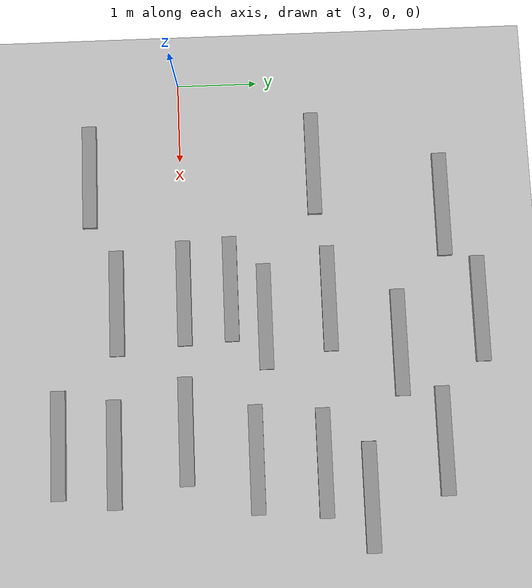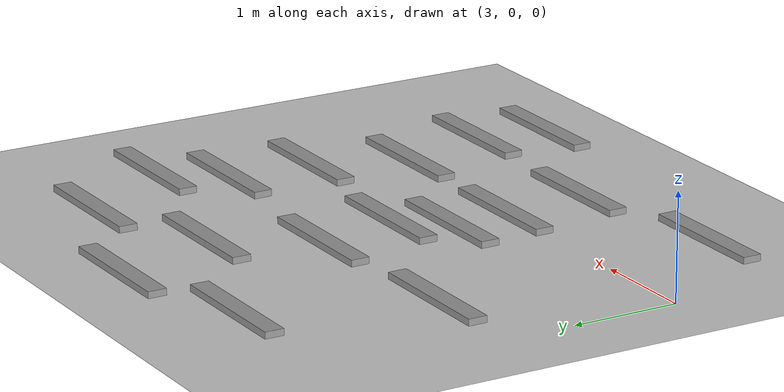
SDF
<sdf version="1.6">
 <world name="default">
  <model name="ground_plane">
   <static>1</static>
   <link name="link">
    <collision name="collision">
     <geometry><plane><normal>0 0 1</normal><size>100 100</size></plane></geometry>
     <surface>
      <contact><ode><kp>1e+12</kp><min_depth>0.01</min_depth></ode></contact>
      <friction><ode><mu>1e+06</mu><mu2>500000</mu2></ode></friction>
     </surface>
    </collision>
    <visual name="visual">
     <cast_shadows>0</cast_shadows>
     <geometry><plane><normal>0 0 1</normal><size>100 100</size></plane></geometry>
     <material>
      <script><uri>file://media/materials/scripts/gazebo.material</uri><name>Gazebo/Grey</name></script>
     </material>
    </visual>
   </link>
  </model>
  <model name="unit_box_heavy_clone_clone_clone_clone">
   <link name="unit_box::link">
    <inertial>
     <mass>5000</mass>
     <inertia><ixx>833.333</ixx><ixy>0</ixy><ixz>0</ixz><iyy>833.333</iyy><iyz>0</iyz><izz>833.333</izz></inertia>
    </inertial>
    <visual name="visual">
     <geometry><box><size>1.30816 0.176312 0.062582</size></box></geometry>
     <material>
      <script><name>Gazebo/Grey</name><uri>file://media/materials/scripts/gazebo.material</uri></script>
      <shader type="pixel"><normal_map>__default__</normal_map></shader>
     </material>
    </visual>
    <collision name="collision">
     <geometry><box><size>1.30816 0.176312 0.062582</size></box></geometry>
     <surface>
      <friction>
       <ode><mu>1</mu><mu2>1</mu2><fdir1>0 0 0</fdir1><slip1>0</slip1><slip2>0</slip2></ode>
       <torsional>
        <coefficient>1</coefficient>
        <patch_radius>0</patch_radius>
        <surface_radius>0</surface_radius>
        <use_patch_radius>1</use_patch_radius>
        <ode><slip>0</slip></ode>
       </torsional>
      </friction>
      <bounce><restitution_coefficient>0</restitution_coefficient><threshold>1e+06</threshold></bounce>
      <contact>
       <collide_without_contact>0</collide_without_contact>
       <collide_without_contact_bitmask>1</collide_without_contact_bitmask>
       <collide_bitmask>1</collide_bitmask>
       <ode>
        <soft_cfm>0</soft_cfm>
        <soft_erp>0.2</soft_erp>
        <kp>1e+13</kp>
        <kd>1</kd>
        <max_vel>0.01</max_vel>
        <min_depth>0</min_depth>
       </ode>
       <bullet>
        <split_impulse>1</split_impulse>
        <split_impulse_penetration_threshold>-0.01</split_impulse_penetration_threshold>
        <soft_cfm>0</soft_cfm>
        <soft_erp>0.2</soft_erp>
        <kp>1e+13</kp>
        <kd>1</kd>
       </bullet>
      </contact>
     </surface>
    </collision>
   </link>
   <static>0</static>
   <pose>7.3588 -0.001088 0.031291 0 0 -3e-05</pose>
  </model>
  <model name="unit_box_heavy_clone_clone_clone_clone_0">
   <link name="unit_box::link">
    <inertial>
     <mass>5000</mass>
     <inertia><ixx>833.333</ixx><ixy>0</ixy><ixz>0</ixz><iyy>833.333</iyy><iyz>0</iyz><izz>833.333</izz></inertia>
    </inertial>
    <visual name="visual">
     <geometry><box><size>1.30816 0.176312 0.062582</size></box></geometry>
     <material>
      <script><name>Gazebo/Grey</name><uri>file://media/materials/scripts/gazebo.material</uri></script>
      <shader type="pixel"><normal_map>__default__</normal_map></shader>
     </material>
    </visual>
    <collision name="collision">
     <geometry><box><size>1.30816 0.176312 0.062582</size></box></geometry>
     <surface>
      <friction>
       <ode><mu>1</mu><mu2>1</mu2><fdir1>0 0 0</fdir1><slip1>0</slip1><slip2>0</slip2></ode>
       <torsional>
        <coefficient>1</coefficient>
        <patch_radius>0</patch_radius>
        <surface_radius>0</surface_radius>
        <use_patch_radius>1</use_patch_radius>
        <ode><slip>0</slip></ode>
       </torsional>
      </friction>
      <bounce><restitution_coefficient>0</restitution_coefficient><threshold>1e+06</threshold></bounce>
      <contact>
       <collide_without_contact>0</collide_without_contact>
       <collide_without_contact_bitmask>1</collide_without_contact_bitmask>
       <collide_bitmask>1</collide_bitmask>
       <ode>
        <soft_cfm>0</soft_cfm>
        <soft_erp>0.2</soft_erp>
        <kp>1e+13</kp>
        <kd>1</kd>
        <max_vel>0.01</max_vel>
        <min_depth>0</min_depth>
       </ode>
       <bullet>
        <split_impulse>1</split_impulse>
        <split_impulse_penetration_threshold>-0.01</split_impulse_penetration_threshold>
        <soft_cfm>0</soft_cfm>
        <soft_erp>0.2</soft_erp>
        <kp>1e+13</kp>
        <kd>1</kd>
       </bullet>
      </contact>
     </surface>
    </collision>
   </link>
   <static>0</static>
   <pose>5.67589 0.012274 0.031291 0 0 -2.9e-05</pose>
  </model>
  <model name="unit_box_heavy_clone_clone_clone_clone_18">
   <link name="unit_box::link">
    <inertial>
     <mass>5000</mass>
     <inertia><ixx>833.333</ixx><ixy>0</ixy><ixz>0</ixz><iyy>833.333</iyy><iyz>0</iyz><izz>833.333</izz></inertia>
    </inertial>
    <visual name="visual">
     <geometry><box><size>1.30816 0.176312 0.062582</size></box></geometry>
     <material>
      <script><name>Gazebo/Grey</name><uri>file://media/materials/scripts/gazebo.material</uri></script>
      <shader type="pixel"><normal_map>__default__</normal_map></shader>
     </material>
    </visual>
    <collision name="collision">
     <geometry><box><size>1.30816 0.176312 0.062582</size></box></geometry>
     <surface>
      <friction>
       <ode><mu>1</mu><mu2>1</mu2><fdir1>0 0 0</fdir1><slip1>0</slip1><slip2>0</slip2></ode>
       <torsional>
        <coefficient>1</coefficient>
        <patch_radius>0</patch_radius>
        <surface_radius>0</surface_radius>
        <use_patch_radius>1</use_patch_radius>
        <ode><slip>0</slip></ode>
       </torsional>
      </friction>
      <bounce><restitution_coefficient>0</restitution_coefficient><threshold>1e+06</threshold></bounce>
      <contact>
       <collide_without_contact>0</collide_without_contact>
       <collide_without_contact_bitmask>1</collide_without_contact_bitmask>
       <collide_bitmask>1</collide_bitmask>
       <ode>
        <soft_cfm>0</soft_cfm>
        <soft_erp>0.2</soft_erp>
        <kp>1e+13</kp>
        <kd>1</kd>
        <max_vel>0.01</max_vel>
        <min_depth>0</min_depth>
       </ode>
       <bullet>
        <split_impulse>1</split_impulse>
        <split_impulse_penetration_threshold>-0.01</split_impulse_penetration_threshold>
        <soft_cfm>0</soft_cfm>
        <soft_erp>0.2</soft_erp>
        <kp>1e+13</kp>
        <kd>1</kd>
       </bullet>
      </contact>
     </surface>
    </collision>
   </link>
   <static>0</static>
   <pose>4.16259 -1.13321 0.031291 -0 -0 -3e-05</pose>
  </model>
  <model name="unit_box_heavy_clone_clone_clone_clone_22">
   <link name="unit_box::link">
    <inertial>
     <mass>5000</mass>
     <inertia><ixx>833.333</ixx><ixy>0</ixy><ixz>0</ixz><iyy>833.333</iyy><iyz>0</iyz><izz>833.333</izz></inertia>
    </inertial>
    <visual name="visual">
     <geometry><box><size>1.30816 0.176312 0.062582</size></box></geometry>
     <material>
      <script><name>Gazebo/Grey</name><uri>file://media/materials/scripts/gazebo.material</uri></script>
      <shader type="pixel"><normal_map>__default__</normal_map></shader>
     </material>
    </visual>
    <collision name="collision">
     <geometry><box><size>1.30816 0.176312 0.062582</size></box></geometry>
     <surface>
      <friction>
       <ode><mu>1</mu><mu2>1</mu2><fdir1>0 0 0</fdir1><slip1>0</slip1><slip2>0</slip2></ode>
       <torsional>
        <coefficient>1</coefficient>
        <patch_radius>0</patch_radius>
        <surface_radius>0</surface_radius>
        <use_patch_radius>1</use_patch_radius>
        <ode><slip>0</slip></ode>
       </torsional>
      </friction>
      <bounce><restitution_coefficient>0</restitution_coefficient><threshold>1e+06</threshold></bounce>
      <contact>
       <collide_without_contact>0</collide_without_contact>
       <collide_without_contact_bitmask>1</collide_without_contact_bitmask>
       <collide_bitmask>1</collide_bitmask>
       <ode>
        <soft_cfm>0</soft_cfm>
        <soft_erp>0.2</soft_erp>
        <kp>1e+13</kp>
        <kd>1</kd>
        <max_vel>0.01</max_vel>
        <min_depth>0</min_depth>
       </ode>
       <bullet>
        <split_impulse>1</split_impulse>
        <split_impulse_penetration_threshold>-0.01</split_impulse_penetration_threshold>
        <soft_cfm>0</soft_cfm>
        <soft_erp>0.2</soft_erp>
        <kp>1e+13</kp>
        <kd>1</kd>
       </bullet>
      </contact>
     </surface>
    </collision>
   </link>
   <static>0</static>
   <pose>4.08567 1.67192 0.031291 -0 -0 -3e-05</pose>
  </model>
  <model name="unit_box_heavy_clone_clone_clone_clone_25">
   <link name="unit_box::link">
    <inertial>
     <mass>5000</mass>
     <inertia><ixx>833.333</ixx><ixy>0</ixy><ixz>0</ixz><iyy>833.333</iyy><iyz>0</iyz><izz>833.333</izz></inertia>
    </inertial>
    <visual name="visual">
     <geometry><box><size>1.30816 0.176312 0.062582</size></box></geometry>
     <material>
      <script><name>Gazebo/Grey</name><uri>file://media/materials/scripts/gazebo.material</uri></script>
      <shader type="pixel"><normal_map>__default__</normal_map></shader>
     </material>
    </visual>
    <collision name="collision">
     <geometry><box><size>1.30816 0.176312 0.062582</size></box></geometry>
     <surface>
      <friction>
       <ode><mu>1</mu><mu2>1</mu2><fdir1>0 0 0</fdir1><slip1>0</slip1><slip2>0</slip2></ode>
       <torsional>
        <coefficient>1</coefficient>
        <patch_radius>0</patch_radius>
        <surface_radius>0</surface_radius>
        <use_patch_radius>1</use_patch_radius>
        <ode><slip>0</slip></ode>
       </torsional>
      </friction>
      <bounce><restitution_coefficient>0</restitution_coefficient><threshold>1e+06</threshold></bounce>
      <contact>
       <collide_without_contact>0</collide_without_contact>
       <collide_without_contact_bitmask>1</collide_without_contact_bitmask>
       <collide_bitmask>1</collide_bitmask>
       <ode>
        <soft_cfm>0</soft_cfm>
        <soft_erp>0.2</soft_erp>
        <kp>1e+13</kp>
        <kd>1</kd>
        <max_vel>0.01</max_vel>
        <min_depth>0</min_depth>
       </ode>
       <bullet>
        <split_impulse>1</split_impulse>
        <split_impulse_penetration_threshold>-0.01</split_impulse_penetration_threshold>
        <soft_cfm>0</soft_cfm>
        <soft_erp>0.2</soft_erp>
        <kp>1e+13</kp>
        <kd>1</kd>
       </bullet>
      </contact>
     </surface>
    </collision>
   </link>
   <static>0</static>
   <pose>4.67342 3.25892 0.031291 0 0 -3e-05</pose>
  </model>
  <model name="unit_box_heavy_clone_clone_clone_clone_34">
   <link name="unit_box::link">
    <inertial>
     <mass>5000</mass>
     <inertia><ixx>833.333</ixx><ixy>0</ixy><ixz>0</ixz><iyy>833.333</iyy><iyz>0</iyz><izz>833.333</izz></inertia>
    </inertial>
    <visual name="visual">
     <geometry><box><size>1.30816 0.176312 0.062582</size></box></geometry>
     <material>
      <script><name>Gazebo/Grey</name><uri>file://media/materials/scripts/gazebo.material</uri></script>
      <shader type="pixel"><normal_map>__default__</normal_map></shader>
     </material>
    </visual>
    <collision name="collision">
     <geometry><box><size>1.30816 0.176312 0.062582</size></box></geometry>
     <surface>
      <friction>
       <ode><mu>1</mu><mu2>1</mu2><fdir1>0 0 0</fdir1><slip1>0</slip1><slip2>0</slip2></ode>
       <torsional>
        <coefficient>1</coefficient>
        <patch_radius>0</patch_radius>
        <surface_radius>0</surface_radius>
        <use_patch_radius>1</use_patch_radius>
        <ode><slip>0</slip></ode>
       </torsional>
      </friction>
      <bounce><restitution_coefficient>0</restitution_coefficient><threshold>1e+06</threshold></bounce>
      <contact>
       <collide_without_contact>0</collide_without_contact>
       <collide_without_contact_bitmask>1</collide_without_contact_bitmask>
       <collide_bitmask>1</collide_bitmask>
       <ode>
        <soft_cfm>0</soft_cfm>
        <soft_erp>0.2</soft_erp>
        <kp>1e+13</kp>
        <kd>1</kd>
        <max_vel>0.01</max_vel>
        <min_depth>0</min_depth>
       </ode>
       <bullet>
        <split_impulse>1</split_impulse>
        <split_impulse_penetration_threshold>-0.01</split_impulse_penetration_threshold>
        <soft_cfm>0</soft_cfm>
        <soft_erp>0.2</soft_erp>
        <kp>1e+13</kp>
        <kd>1</kd>
       </bullet>
      </contact>
     </surface>
    </collision>
   </link>
   <static>0</static>
   <pose>5.77257 -0.815667 0.031291 0 0 -3e-05</pose>
  </model>
  <model name="unit_box_heavy_clone_clone_clone_clone_35">
   <link name="unit_box::link">
    <inertial>
     <mass>5000</mass>
     <inertia><ixx>833.333</ixx><ixy>0</ixy><ixz>0</ixz><iyy>833.333</iyy><iyz>0</iyz><izz>833.333</izz></inertia>
    </inertial>
    <visual name="visual">
     <geometry><box><size>1.30816 0.176312 0.062582</size></box></geometry>
     <material>
      <script><name>Gazebo/Grey</name><uri>file://media/materials/scripts/gazebo.material</uri></script>
      <shader type="pixel"><normal_map>__default__</normal_map></shader>
     </material>
    </visual>
    <collision name="collision">
     <geometry><box><size>1.30816 0.176312 0.062582</size></box></geometry>
     <surface>
      <friction>
       <ode><mu>1</mu><mu2>1</mu2><fdir1>0 0 0</fdir1><slip1>0</slip1><slip2>0</slip2></ode>
       <torsional>
        <coefficient>1</coefficient>
        <patch_radius>0</patch_radius>
        <surface_radius>0</surface_radius>
        <use_patch_radius>1</use_patch_radius>
        <ode><slip>0</slip></ode>
       </torsional>
      </friction>
      <bounce><restitution_coefficient>0</restitution_coefficient><threshold>1e+06</threshold></bounce>
      <contact>
       <collide_without_contact>0</collide_without_contact>
       <collide_without_contact_bitmask>1</collide_without_contact_bitmask>
       <collide_bitmask>1</collide_bitmask>
       <ode>
        <soft_cfm>0</soft_cfm>
        <soft_erp>0.2</soft_erp>
        <kp>1e+13</kp>
        <kd>1</kd>
        <max_vel>0.01</max_vel>
        <min_depth>0</min_depth>
       </ode>
       <bullet>
        <split_impulse>1</split_impulse>
        <split_impulse_penetration_threshold>-0.01</split_impulse_penetration_threshold>
        <soft_cfm>0</soft_cfm>
        <soft_erp>0.2</soft_erp>
        <kp>1e+13</kp>
        <kd>1</kd>
       </bullet>
      </contact>
     </surface>
    </collision>
   </link>
   <static>0</static>
   <pose>5.64327 0.589589 0.031291 0 -0 -3e-05</pose>
  </model>
  <model name="unit_box_heavy_clone_clone_clone_clone_36">
   <link name="unit_box::link">
    <inertial>
     <mass>5000</mass>
     <inertia><ixx>833.333</ixx><ixy>0</ixy><ixz>0</ixz><iyy>833.333</iyy><iyz>0</iyz><izz>833.333</izz></inertia>
    </inertial>
    <visual name="visual">
     <geometry><box><size>1.30816 0.176312 0.062582</size></box></geometry>
     <material>
      <script><name>Gazebo/Grey</name><uri>file://media/materials/scripts/gazebo.material</uri></script>
      <shader type="pixel"><normal_map>__default__</normal_map></shader>
     </material>
    </visual>
    <collision name="collision">
     <geometry><box><size>1.30816 0.176312 0.062582</size></box></geometry>
     <surface>
      <friction>
       <ode><mu>1</mu><mu2>1</mu2><fdir1>0 0 0</fdir1><slip1>0</slip1><slip2>0</slip2></ode>
       <torsional>
        <coefficient>1</coefficient>
        <patch_radius>0</patch_radius>
        <surface_radius>0</surface_radius>
        <use_patch_radius>1</use_patch_radius>
        <ode><slip>0</slip></ode>
       </torsional>
      </friction>
      <bounce><restitution_coefficient>0</restitution_coefficient><threshold>1e+06</threshold></bounce>
      <contact>
       <collide_without_contact>0</collide_without_contact>
       <collide_without_contact_bitmask>1</collide_without_contact_bitmask>
       <collide_bitmask>1</collide_bitmask>
       <ode>
        <soft_cfm>0</soft_cfm>
        <soft_erp>0.2</soft_erp>
        <kp>1e+13</kp>
        <kd>1</kd>
        <max_vel>0.01</max_vel>
        <min_depth>0</min_depth>
       </ode>
       <bullet>
        <split_impulse>1</split_impulse>
        <split_impulse_penetration_threshold>-0.01</split_impulse_penetration_threshold>
        <soft_cfm>0</soft_cfm>
        <soft_erp>0.2</soft_erp>
        <kp>1e+13</kp>
        <kd>1</kd>
       </bullet>
      </contact>
     </surface>
    </collision>
   </link>
   <static>0</static>
   <pose>6 1 0.031291 0 0 -3e-05</pose>
  </model>
  <model name="unit_box_heavy_clone_clone_clone_clone_37">
   <link name="unit_box::link">
    <inertial>
     <mass>5000</mass>
     <inertia><ixx>833.333</ixx><ixy>0</ixy><ixz>0</ixz><iyy>833.333</iyy><iyz>0</iyz><izz>833.333</izz></inertia>
    </inertial>
    <visual name="visual">
     <geometry><box><size>1.30816 0.176312 0.062582</size></box></geometry>
     <material>
      <script><name>Gazebo/Grey</name><uri>file://media/materials/scripts/gazebo.material</uri></script>
      <shader type="pixel"><normal_map>__default__</normal_map></shader>
     </material>
    </visual>
    <collision name="collision">
     <geometry><box><size>1.30816 0.176312 0.062582</size></box></geometry>
     <surface>
      <friction>
       <ode><mu>1</mu><mu2>1</mu2><fdir1>0 0 0</fdir1><slip1>0</slip1><slip2>0</slip2></ode>
       <torsional>
        <coefficient>1</coefficient>
        <patch_radius>0</patch_radius>
        <surface_radius>0</surface_radius>
        <use_patch_radius>1</use_patch_radius>
        <ode><slip>0</slip></ode>
       </torsional>
      </friction>
      <bounce><restitution_coefficient>0</restitution_coefficient><threshold>1e+06</threshold></bounce>
      <contact>
       <collide_without_contact>0</collide_without_contact>
       <collide_without_contact_bitmask>1</collide_without_contact_bitmask>
       <collide_bitmask>1</collide_bitmask>
       <ode>
        <soft_cfm>0</soft_cfm>
        <soft_erp>0.2</soft_erp>
        <kp>1e+13</kp>
        <kd>1</kd>
        <max_vel>0.01</max_vel>
        <min_depth>0</min_depth>
       </ode>
       <bullet>
        <split_impulse>1</split_impulse>
        <split_impulse_penetration_threshold>-0.01</split_impulse_penetration_threshold>
        <soft_cfm>0</soft_cfm>
        <soft_erp>0.2</soft_erp>
        <kp>1e+13</kp>
        <kd>1</kd>
       </bullet>
      </contact>
     </surface>
    </collision>
   </link>
   <static>0</static>
   <pose>5.80583 1.79428 0.031291 -0 -0 -3e-05</pose>
  </model>
  <model name="unit_box_heavy_clone_clone_clone_clone_38">
   <link name="unit_box::link">
    <inertial>
     <mass>5000</mass>
     <inertia><ixx>833.333</ixx><ixy>0</ixy><ixz>0</ixz><iyy>833.333</iyy><iyz>0</iyz><izz>833.333</izz></inertia>
    </inertial>
    <visual name="visual">
     <geometry><box><size>1.30816 0.176312 0.062582</size></box></geometry>
     <material>
      <script><name>Gazebo/Grey</name><uri>file://media/materials/scripts/gazebo.material</uri></script>
      <shader type="pixel"><normal_map>__default__</normal_map></shader>
     </material>
    </visual>
    <collision name="collision">
     <geometry><box><size>1.30816 0.176312 0.062582</size></box></geometry>
     <surface>
      <friction>
       <ode><mu>1</mu><mu2>1</mu2><fdir1>0 0 0</fdir1><slip1>0</slip1><slip2>0</slip2></ode>
       <torsional>
        <coefficient>1</coefficient>
        <patch_radius>0</patch_radius>
        <surface_radius>0</surface_radius>
        <use_patch_radius>1</use_patch_radius>
        <ode><slip>0</slip></ode>
       </torsional>
      </friction>
      <bounce><restitution_coefficient>0</restitution_coefficient><threshold>1e+06</threshold></bounce>
      <contact>
       <collide_without_contact>0</collide_without_contact>
       <collide_without_contact_bitmask>1</collide_without_contact_bitmask>
       <collide_bitmask>1</collide_bitmask>
       <ode>
        <soft_cfm>0</soft_cfm>
        <soft_erp>0.2</soft_erp>
        <kp>1e+13</kp>
        <kd>1</kd>
        <max_vel>0.01</max_vel>
        <min_depth>0</min_depth>
       </ode>
       <bullet>
        <split_impulse>1</split_impulse>
        <split_impulse_penetration_threshold>-0.01</split_impulse_penetration_threshold>
        <soft_cfm>0</soft_cfm>
        <soft_erp>0.2</soft_erp>
        <kp>1e+13</kp>
        <kd>1</kd>
       </bullet>
      </contact>
     </surface>
    </collision>
   </link>
   <static>0</static>
   <pose>6.38049 2.63572 0.031291 0 0 -3e-05</pose>
  </model>
  <model name="unit_box_heavy_clone_clone_clone_clone_39">
   <link name="unit_box::link">
    <inertial>
     <mass>5000</mass>
     <inertia><ixx>833.333</ixx><ixy>0</ixy><ixz>0</ixz><iyy>833.333</iyy><iyz>0</iyz><izz>833.333</izz></inertia>
    </inertial>
    <visual name="visual">
     <geometry><box><size>1.30816 0.176312 0.062582</size></box></geometry>
     <material>
      <script><name>Gazebo/Grey</name><uri>file://media/materials/scripts/gazebo.material</uri></script>
      <shader type="pixel"><normal_map>__default__</normal_map></shader>
     </material>
    </visual>
    <collision name="collision">
     <geometry><box><size>1.30816 0.176312 0.062582</size></box></geometry>
     <surface>
      <friction>
       <ode><mu>1</mu><mu2>1</mu2><fdir1>0 0 0</fdir1><slip1>0</slip1><slip2>0</slip2></ode>
       <torsional>
        <coefficient>1</coefficient>
        <patch_radius>0</patch_radius>
        <surface_radius>0</surface_radius>
        <use_patch_radius>1</use_patch_radius>
        <ode><slip>0</slip></ode>
       </torsional>
      </friction>
      <bounce><restitution_coefficient>0</restitution_coefficient><threshold>1e+06</threshold></bounce>
      <contact>
       <collide_without_contact>0</collide_without_contact>
       <collide_without_contact_bitmask>1</collide_without_contact_bitmask>
       <collide_bitmask>1</collide_bitmask>
       <ode>
        <soft_cfm>0</soft_cfm>
        <soft_erp>0.2</soft_erp>
        <kp>1e+13</kp>
        <kd>1</kd>
        <max_vel>0.01</max_vel>
        <min_depth>0</min_depth>
       </ode>
       <bullet>
        <split_impulse>1</split_impulse>
        <split_impulse_penetration_threshold>-0.01</split_impulse_penetration_threshold>
        <soft_cfm>0</soft_cfm>
        <soft_erp>0.2</soft_erp>
        <kp>1e+13</kp>
        <kd>1</kd>
       </bullet>
      </contact>
     </surface>
    </collision>
   </link>
   <static>0</static>
   <pose>5.99909 3.64602 0.031291 -0 -0 -3e-05</pose>
  </model>
  <model name="unit_box_heavy_clone_clone_clone_clone_40">
   <link name="unit_box::link">
    <inertial>
     <mass>5000</mass>
     <inertia><ixx>833.333</ixx><ixy>0</ixy><ixz>0</ixz><iyy>833.333</iyy><iyz>0</iyz><izz>833.333</izz></inertia>
    </inertial>
    <visual name="visual">
     <geometry><box><size>1.30816 0.176312 0.062582</size></box></geometry>
     <material>
      <script><name>Gazebo/Grey</name><uri>file://media/materials/scripts/gazebo.material</uri></script>
      <shader type="pixel"><normal_map>__default__</normal_map></shader>
     </material>
    </visual>
    <collision name="collision">
     <geometry><box><size>1.30816 0.176312 0.062582</size></box></geometry>
     <surface>
      <friction>
       <ode><mu>1</mu><mu2>1</mu2><fdir1>0 0 0</fdir1><slip1>0</slip1><slip2>0</slip2></ode>
       <torsional>
        <coefficient>1</coefficient>
        <patch_radius>0</patch_radius>
        <surface_radius>0</surface_radius>
        <use_patch_radius>1</use_patch_radius>
        <ode><slip>0</slip></ode>
       </torsional>
      </friction>
      <bounce><restitution_coefficient>0</restitution_coefficient><threshold>1e+06</threshold></bounce>
      <contact>
       <collide_without_contact>0</collide_without_contact>
       <collide_without_contact_bitmask>1</collide_without_contact_bitmask>
       <collide_bitmask>1</collide_bitmask>
       <ode>
        <soft_cfm>0</soft_cfm>
        <soft_erp>0.2</soft_erp>
        <kp>1e+13</kp>
        <kd>1</kd>
        <max_vel>0.01</max_vel>
        <min_depth>0</min_depth>
       </ode>
       <bullet>
        <split_impulse>1</split_impulse>
        <split_impulse_penetration_threshold>-0.01</split_impulse_penetration_threshold>
        <soft_cfm>0</soft_cfm>
        <soft_erp>0.2</soft_erp>
        <kp>1e+13</kp>
        <kd>1</kd>
       </bullet>
      </contact>
     </surface>
    </collision>
   </link>
   <static>0</static>
   <pose>7.72415 0.838826 0.031291 3e-06 0 -3e-05</pose>
  </model>
  <model name="unit_box_heavy_clone_clone_clone_clone_41">
   <link name="unit_box::link">
    <inertial>
     <mass>5000</mass>
     <inertia><ixx>833.333</ixx><ixy>0</ixy><ixz>0</ixz><iyy>833.333</iyy><iyz>0</iyz><izz>833.333</izz></inertia>
    </inertial>
    <visual name="visual">
     <geometry><box><size>1.30816 0.176312 0.062582</size></box></geometry>
     <material>
      <script><name>Gazebo/Grey</name><uri>file://media/materials/scripts/gazebo.material</uri></script>
      <shader type="pixel"><normal_map>__default__</normal_map></shader>
     </material>
    </visual>
    <collision name="collision">
     <geometry><box><size>1.30816 0.176312 0.062582</size></box></geometry>
     <surface>
      <friction>
       <ode><mu>1</mu><mu2>1</mu2><fdir1>0 0 0</fdir1><slip1>0</slip1><slip2>0</slip2></ode>
       <torsional>
        <coefficient>1</coefficient>
        <patch_radius>0</patch_radius>
        <surface_radius>0</surface_radius>
        <use_patch_radius>1</use_patch_radius>
        <ode><slip>0</slip></ode>
       </torsional>
      </friction>
      <bounce><restitution_coefficient>0</restitution_coefficient><threshold>1e+06</threshold></bounce>
      <contact>
       <collide_without_contact>0</collide_without_contact>
       <collide_without_contact_bitmask>1</collide_without_contact_bitmask>
       <collide_bitmask>1</collide_bitmask>
       <ode>
        <soft_cfm>0</soft_cfm>
        <soft_erp>0.2</soft_erp>
        <kp>1e+13</kp>
        <kd>1</kd>
        <max_vel>0.01</max_vel>
        <min_depth>0</min_depth>
       </ode>
       <bullet>
        <split_impulse>1</split_impulse>
        <split_impulse_penetration_threshold>-0.01</split_impulse_penetration_threshold>
        <soft_cfm>0</soft_cfm>
        <soft_erp>0.2</soft_erp>
        <kp>1e+13</kp>
        <kd>1</kd>
       </bullet>
      </contact>
     </surface>
    </collision>
   </link>
   <static>0</static>
   <pose>7.79296 1.65197 0.031291 -0 -0 -3e-05</pose>
  </model>
  <model name="unit_box_heavy_clone_clone_clone_clone_42">
   <link name="unit_box::link">
    <inertial>
     <mass>5000</mass>
     <inertia><ixx>833.333</ixx><ixy>0</ixy><ixz>0</ixz><iyy>833.333</iyy><iyz>0</iyz><izz>833.333</izz></inertia>
    </inertial>
    <visual name="visual">
     <geometry><box><size>1.30816 0.176312 0.062582</size></box></geometry>
     <material>
      <script><name>Gazebo/Grey</name><uri>file://media/materials/scripts/gazebo.material</uri></script>
      <shader type="pixel"><normal_map>__default__</normal_map></shader>
     </material>
    </visual>
    <collision name="collision">
     <geometry><box><size>1.30816 0.176312 0.062582</size></box></geometry>
     <surface>
      <friction>
       <ode><mu>1</mu><mu2>1</mu2><fdir1>0 0 0</fdir1><slip1>0</slip1><slip2>0</slip2></ode>
       <torsional>
        <coefficient>1</coefficient>
        <patch_radius>0</patch_radius>
        <surface_radius>0</surface_radius>
        <use_patch_radius>1</use_patch_radius>
        <ode><slip>0</slip></ode>
       </torsional>
      </friction>
      <bounce><restitution_coefficient>0</restitution_coefficient><threshold>1e+06</threshold></bounce>
      <contact>
       <collide_without_contact>0</collide_without_contact>
       <collide_without_contact_bitmask>1</collide_without_contact_bitmask>
       <collide_bitmask>1</collide_bitmask>
       <ode>
        <soft_cfm>0</soft_cfm>
        <soft_erp>0.2</soft_erp>
        <kp>1e+13</kp>
        <kd>1</kd>
        <max_vel>0.01</max_vel>
        <min_depth>0</min_depth>
       </ode>
       <bullet>
        <split_impulse>1</split_impulse>
        <split_impulse_penetration_threshold>-0.01</split_impulse_penetration_threshold>
        <soft_cfm>0</soft_cfm>
        <soft_erp>0.2</soft_erp>
        <kp>1e+13</kp>
        <kd>1</kd>
       </bullet>
      </contact>
     </surface>
    </collision>
   </link>
   <static>0</static>
   <pose>8.21552 2.1892 0.031291 -3e-06 -0 -3e-05</pose>
  </model>
  <model name="unit_box_heavy_clone_clone_clone_clone_43">
   <link name="unit_box::link">
    <inertial>
     <mass>5000</mass>
     <inertia><ixx>833.333</ixx><ixy>0</ixy><ixz>0</ixz><iyy>833.333</iyy><iyz>0</iyz><izz>833.333</izz></inertia>
    </inertial>
    <visual name="visual">
     <geometry><box><size>1.30816 0.176312 0.062582</size></box></geometry>
     <material>
      <script><name>Gazebo/Grey</name><uri>file://media/materials/scripts/gazebo.material</uri></script>
      <shader type="pixel"><normal_map>__default__</normal_map></shader>
     </material>
    </visual>
    <collision name="collision">
     <geometry><box><size>1.30816 0.176312 0.062582</size></box></geometry>
     <surface>
      <friction>
       <ode><mu>1</mu><mu2>1</mu2><fdir1>0 0 0</fdir1><slip1>0</slip1><slip2>0</slip2></ode>
       <torsional>
        <coefficient>1</coefficient>
        <patch_radius>0</patch_radius>
        <surface_radius>0</surface_radius>
        <use_patch_radius>1</use_patch_radius>
        <ode><slip>0</slip></ode>
       </torsional>
      </friction>
      <bounce><restitution_coefficient>0</restitution_coefficient><threshold>1e+06</threshold></bounce>
      <contact>
       <collide_without_contact>0</collide_without_contact>
       <collide_without_contact_bitmask>1</collide_without_contact_bitmask>
       <collide_bitmask>1</collide_bitmask>
       <ode>
        <soft_cfm>0</soft_cfm>
        <soft_erp>0.2</soft_erp>
        <kp>1e+13</kp>
        <kd>1</kd>
        <max_vel>0.01</max_vel>
        <min_depth>0</min_depth>
       </ode>
       <bullet>
        <split_impulse>1</split_impulse>
        <split_impulse_penetration_threshold>-0.01</split_impulse_penetration_threshold>
        <soft_cfm>0</soft_cfm>
        <soft_erp>0.2</soft_erp>
        <kp>1e+13</kp>
        <kd>1</kd>
       </bullet>
      </contact>
     </surface>
    </collision>
   </link>
   <static>0</static>
   <pose>7.58535 3.11085 0.031291 -3e-06 -0 -3e-05</pose>
  </model>
  <model name="unit_box_heavy_clone_clone_clone_clone_44">
   <link name="unit_box::link">
    <inertial>
     <mass>5000</mass>
     <inertia><ixx>833.333</ixx><ixy>0</ixy><ixz>0</ixz><iyy>833.333</iyy><iyz>0</iyz><izz>833.333</izz></inertia>
    </inertial>
    <visual name="visual">
     <geometry><box><size>1.30816 0.176312 0.062582</size></box></geometry>
     <material>
      <script><name>Gazebo/Grey</name><uri>file://media/materials/scripts/gazebo.material</uri></script>
      <shader type="pixel"><normal_map>__default__</normal_map></shader>
     </material>
    </visual>
    <collision name="collision">
     <geometry><box><size>1.30816 0.176312 0.062582</size></box></geometry>
     <surface>
      <friction>
       <ode><mu>1</mu><mu2>1</mu2><fdir1>0 0 0</fdir1><slip1>0</slip1><slip2>0</slip2></ode>
       <torsional>
        <coefficient>1</coefficient>
        <patch_radius>0</patch_radius>
        <surface_radius>0</surface_radius>
        <use_patch_radius>1</use_patch_radius>
        <ode><slip>0</slip></ode>
       </torsional>
      </friction>
      <bounce><restitution_coefficient>0</restitution_coefficient><threshold>1e+06</threshold></bounce>
      <contact>
       <collide_without_contact>0</collide_without_contact>
       <collide_without_contact_bitmask>1</collide_without_contact_bitmask>
       <collide_bitmask>1</collide_bitmask>
       <ode>
        <soft_cfm>0</soft_cfm>
        <soft_erp>0.2</soft_erp>
        <kp>1e+13</kp>
        <kd>1</kd>
        <max_vel>0.01</max_vel>
        <min_depth>0</min_depth>
       </ode>
       <bullet>
        <split_impulse>1</split_impulse>
        <split_impulse_penetration_threshold>-0.01</split_impulse_penetration_threshold>
        <soft_cfm>0</soft_cfm>
        <soft_erp>0.2</soft_erp>
        <kp>1e+13</kp>
        <kd>1</kd>
       </bullet>
      </contact>
     </surface>
    </collision>
   </link>
   <static>0</static>
   <pose>7.60192 -0.870565 0.031291 3e-06 0 -3e-05</pose>
  </model>
  <model name="unit_box_heavy_clone_clone_clone_clone_46">
   <link name="unit_box::link">
    <inertial>
     <mass>5000</mass>
     <inertia><ixx>833.333</ixx><ixy>0</ixy><ixz>0</ixz><iyy>833.333</iyy><iyz>0</iyz><izz>833.333</izz></inertia>
    </inertial>
    <visual name="visual">
     <geometry><box><size>1.30816 0.176312 0.062582</size></box></geometry>
     <material>
      <script><name>Gazebo/Grey</name><uri>file://media/materials/scripts/gazebo.material</uri></script>
      <shader type="pixel"><normal_map>__default__</normal_map></shader>
     </material>
    </visual>
    <collision name="collision">
     <geometry><box><size>1.30816 0.176312 0.062582</size></box></geometry>
     <surface>
      <friction>
       <ode><mu>1</mu><mu2>1</mu2><fdir1>0 0 0</fdir1><slip1>0</slip1><slip2>0</slip2></ode>
       <torsional>
        <coefficient>1</coefficient>
        <patch_radius>0</patch_radius>
        <surface_radius>0</surface_radius>
        <use_patch_radius>1</use_patch_radius>
        <ode><slip>0</slip></ode>
       </torsional>
      </friction>
      <bounce><restitution_coefficient>0</restitution_coefficient><threshold>1e+06</threshold></bounce>
      <contact>
       <collide_without_contact>0</collide_without_contact>
       <collide_without_contact_bitmask>1</collide_without_contact_bitmask>
       <collide_bitmask>1</collide_bitmask>
       <ode>
        <soft_cfm>0</soft_cfm>
        <soft_erp>0.2</soft_erp>
        <kp>1e+13</kp>
        <kd>1</kd>
        <max_vel>0.01</max_vel>
        <min_depth>0</min_depth>
       </ode>
       <bullet>
        <split_impulse>1</split_impulse>
        <split_impulse_penetration_threshold>-0.01</split_impulse_penetration_threshold>
        <soft_cfm>0</soft_cfm>
        <soft_erp>0.2</soft_erp>
        <kp>1e+13</kp>
        <kd>1</kd>
       </bullet>
      </contact>
     </surface>
    </collision>
   </link>
   <static>0</static>
   <pose>7.47253 -1.54108 0.031291 2e-06 -0 -3e-05</pose>
  </model>
 </world>
</sdf>
